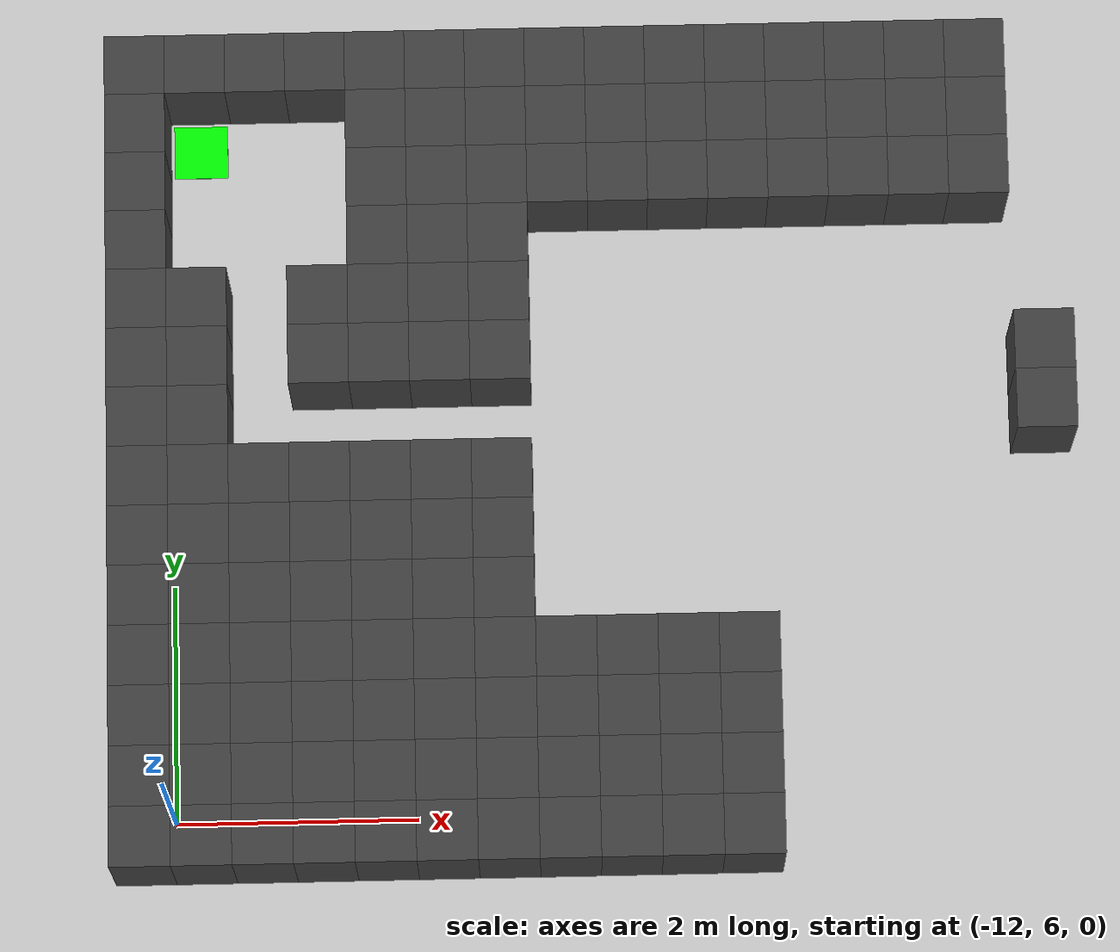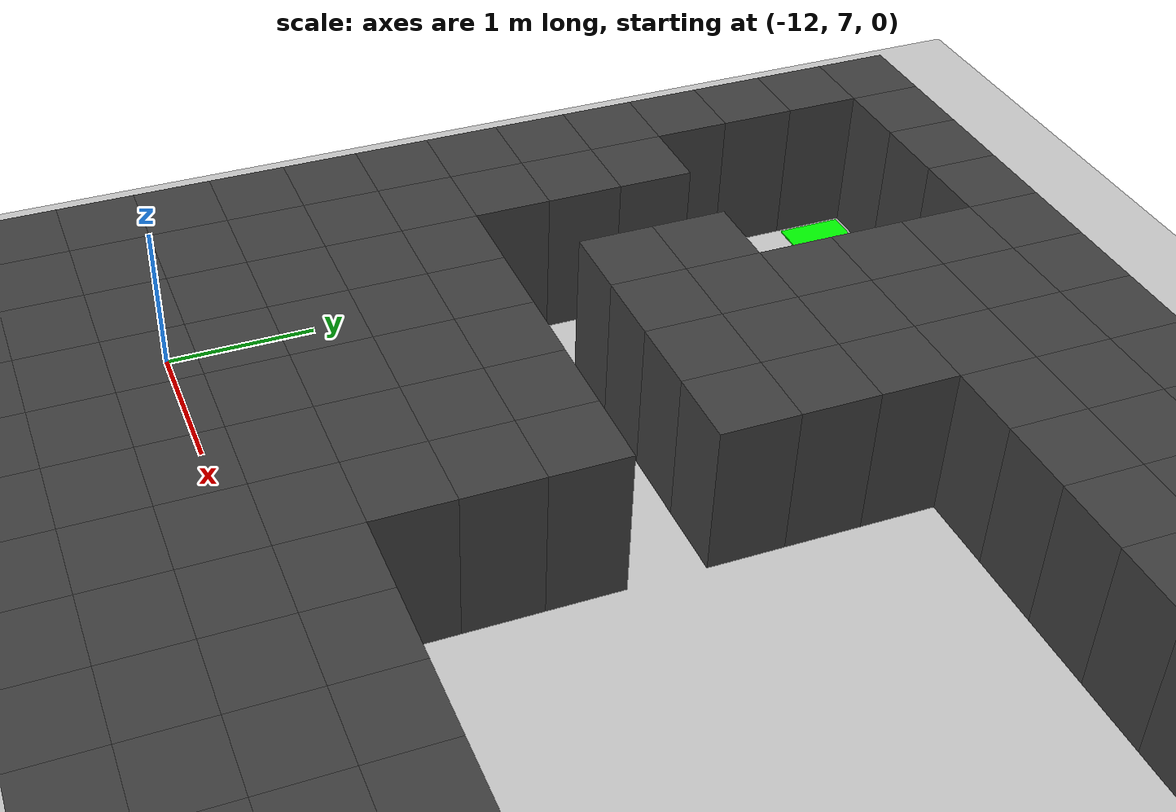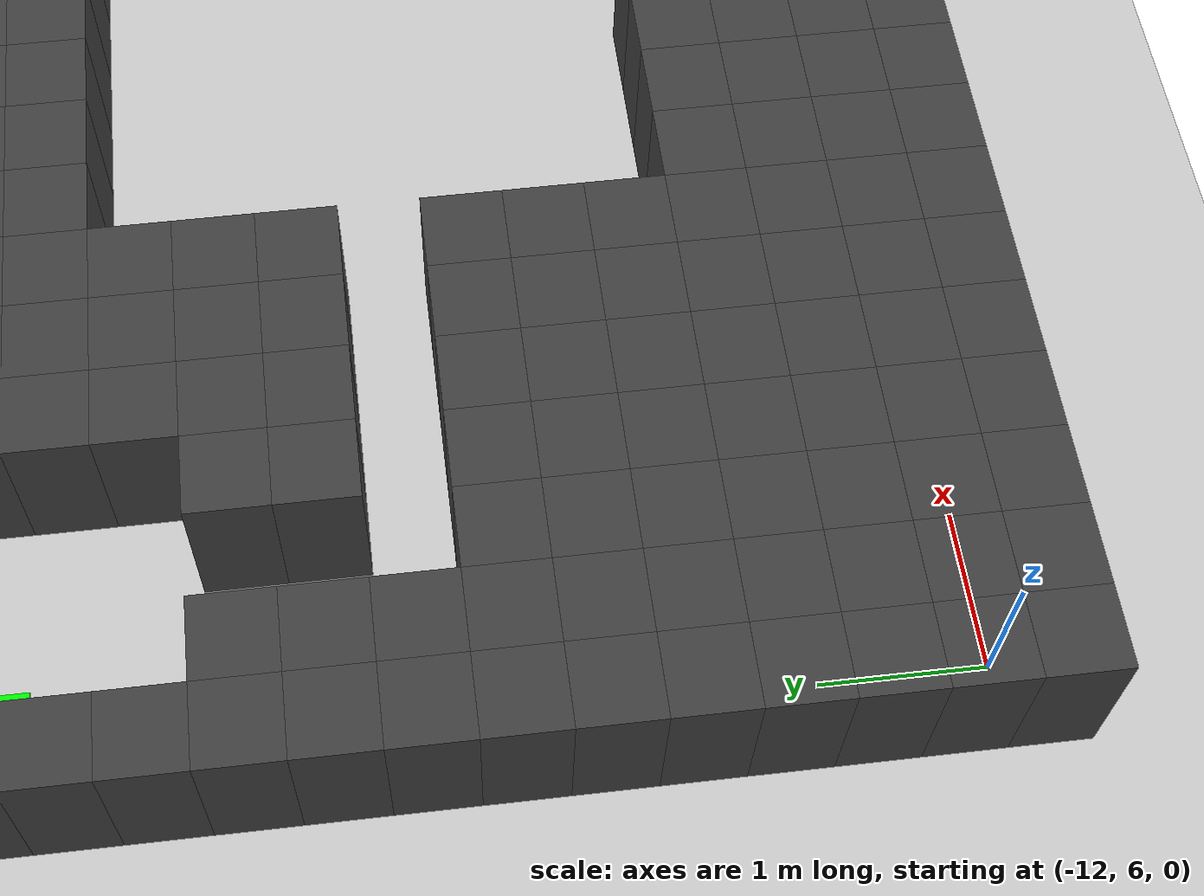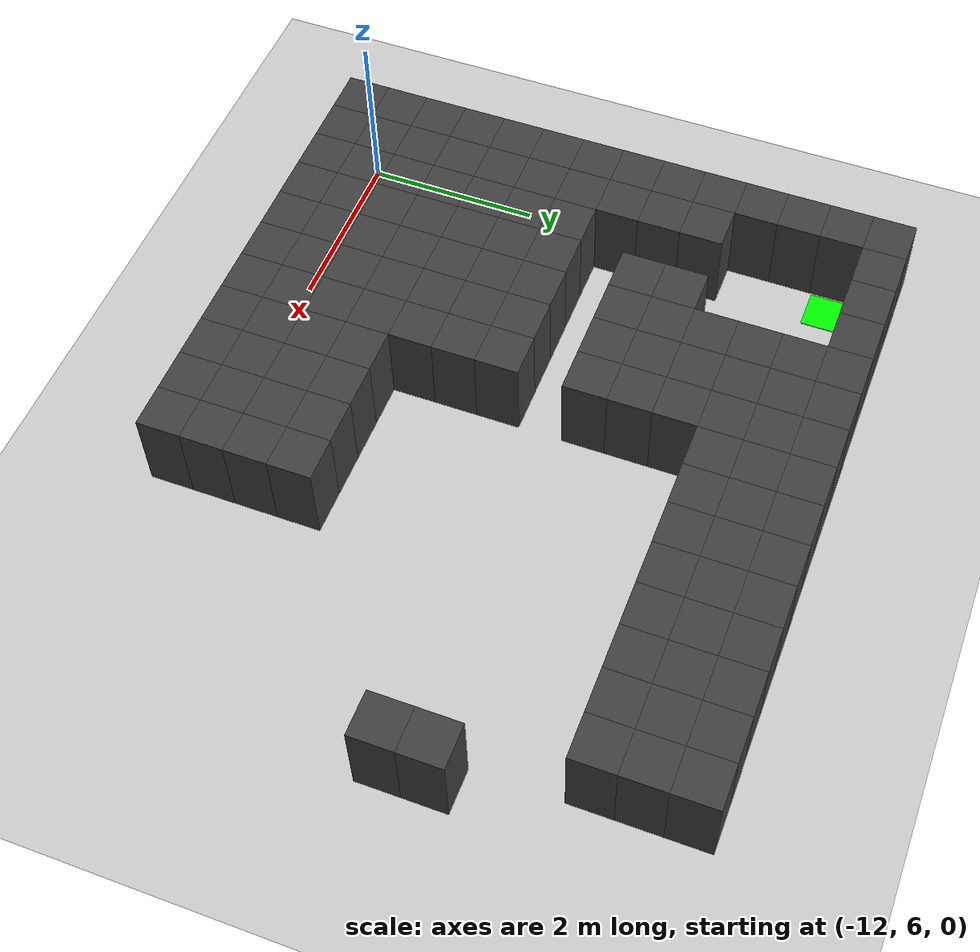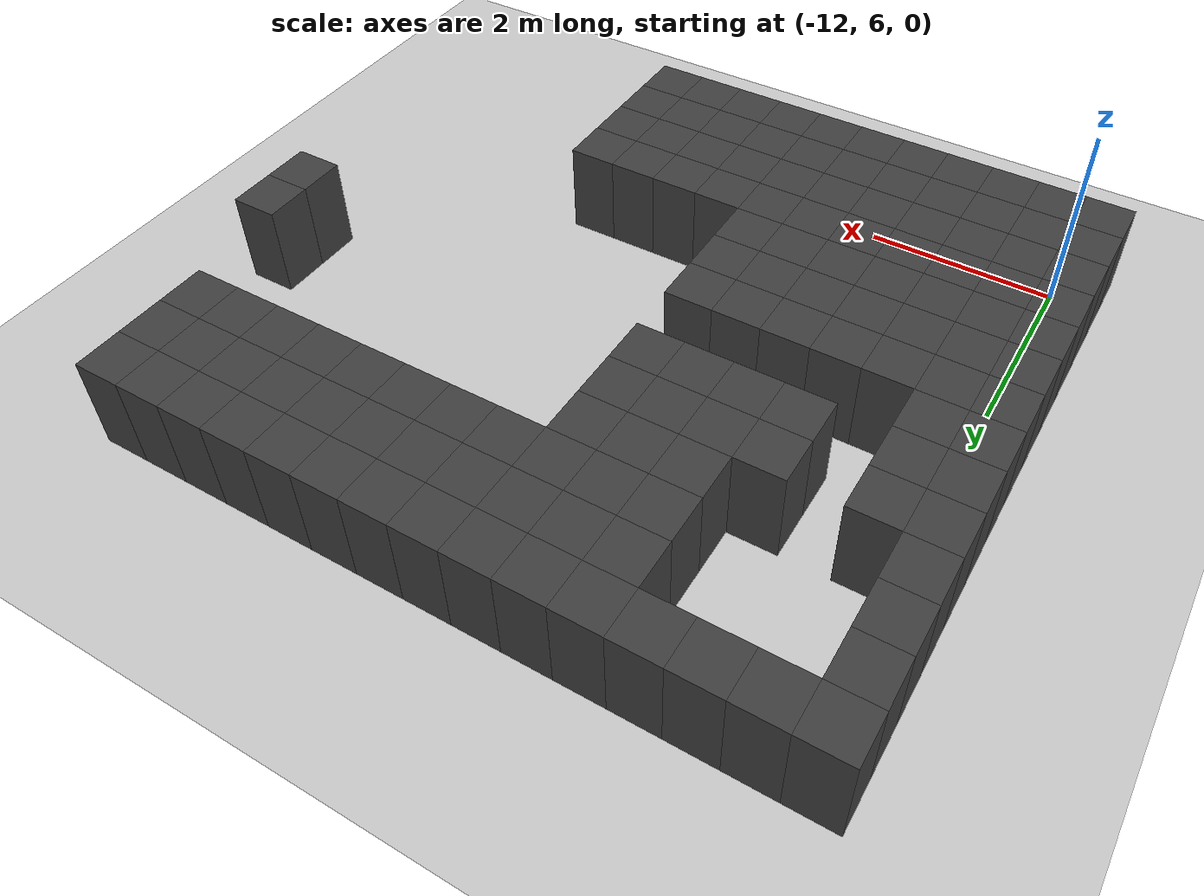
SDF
<sdf version="1.7">
 <world name="map_14495">
  <model name="ground_plane">
   <static>true</static>
   <link name="link">
    <collision name="collision">
     <geometry><plane><normal>0 0 1</normal><size>200 200</size></plane></geometry>
    </collision>
    <visual name="visual">
     <geometry><plane><normal>0 0 1</normal><size>200 200</size></plane></geometry>
     <material><ambient>0.8 0.8 0.8 1</ambient><diffuse>0.8 0.8 0.8 1</diffuse></material>
    </visual>
   </link>
  </model>
  <model name="maze_environment">
   <static>true</static>
   <link name="wall_0">
    <pose>-12.250 12.250 0.500 0 0 0</pose>
    <collision name="col"><geometry><box><size>0.5 0.5 1.0</size></box></geometry></collision>
    <visual name="vis">
     <geometry><box><size>0.5 0.5 1.0</size></box></geometry>
     <material><ambient>0.15 0.15 0.15 1</ambient><diffuse>0.25 0.25 0.25 1</diffuse></material>
    </visual>
   </link>
   <link name="wall_1">
    <pose>-11.750 12.250 0.500 0 0 0</pose>
    <collision name="col"><geometry><box><size>0.5 0.5 1.0</size></box></geometry></collision>
    <visual name="vis">
     <geometry><box><size>0.5 0.5 1.0</size></box></geometry>
     <material><ambient>0.15 0.15 0.15 1</ambient><diffuse>0.25 0.25 0.25 1</diffuse></material>
    </visual>
   </link>
   <link name="wall_2">
    <pose>-11.250 12.250 0.500 0 0 0</pose>
    <collision name="col"><geometry><box><size>0.5 0.5 1.0</size></box></geometry></collision>
    <visual name="vis">
     <geometry><box><size>0.5 0.5 1.0</size></box></geometry>
     <material><ambient>0.15 0.15 0.15 1</ambient><diffuse>0.25 0.25 0.25 1</diffuse></material>
    </visual>
   </link>
   <link name="wall_3">
    <pose>-10.750 12.250 0.500 0 0 0</pose>
    <collision name="col"><geometry><box><size>0.5 0.5 1.0</size></box></geometry></collision>
    <visual name="vis">
     <geometry><box><size>0.5 0.5 1.0</size></box></geometry>
     <material><ambient>0.15 0.15 0.15 1</ambient><diffuse>0.25 0.25 0.25 1</diffuse></material>
    </visual>
   </link>
   <link name="wall_4">
    <pose>-10.250 12.250 0.500 0 0 0</pose>
    <collision name="col"><geometry><box><size>0.5 0.5 1.0</size></box></geometry></collision>
    <visual name="vis">
     <geometry><box><size>0.5 0.5 1.0</size></box></geometry>
     <material><ambient>0.15 0.15 0.15 1</ambient><diffuse>0.25 0.25 0.25 1</diffuse></material>
    </visual>
   </link>
   <link name="wall_5">
    <pose>-9.750 12.250 0.500 0 0 0</pose>
    <collision name="col"><geometry><box><size>0.5 0.5 1.0</size></box></geometry></collision>
    <visual name="vis">
     <geometry><box><size>0.5 0.5 1.0</size></box></geometry>
     <material><ambient>0.15 0.15 0.15 1</ambient><diffuse>0.25 0.25 0.25 1</diffuse></material>
    </visual>
   </link>
   <link name="wall_6">
    <pose>-9.250 12.250 0.500 0 0 0</pose>
    <collision name="col"><geometry><box><size>0.5 0.5 1.0</size></box></geometry></collision>
    <visual name="vis">
     <geometry><box><size>0.5 0.5 1.0</size></box></geometry>
     <material><ambient>0.15 0.15 0.15 1</ambient><diffuse>0.25 0.25 0.25 1</diffuse></material>
    </visual>
   </link>
   <link name="wall_7">
    <pose>-8.750 12.250 0.500 0 0 0</pose>
    <collision name="col"><geometry><box><size>0.5 0.5 1.0</size></box></geometry></collision>
    <visual name="vis">
     <geometry><box><size>0.5 0.5 1.0</size></box></geometry>
     <material><ambient>0.15 0.15 0.15 1</ambient><diffuse>0.25 0.25 0.25 1</diffuse></material>
    </visual>
   </link>
   <link name="wall_8">
    <pose>-8.250 12.250 0.500 0 0 0</pose>
    <collision name="col"><geometry><box><size>0.5 0.5 1.0</size></box></geometry></collision>
    <visual name="vis">
     <geometry><box><size>0.5 0.5 1.0</size></box></geometry>
     <material><ambient>0.15 0.15 0.15 1</ambient><diffuse>0.25 0.25 0.25 1</diffuse></material>
    </visual>
   </link>
   <link name="wall_9">
    <pose>-7.750 12.250 0.500 0 0 0</pose>
    <collision name="col"><geometry><box><size>0.5 0.5 1.0</size></box></geometry></collision>
    <visual name="vis">
     <geometry><box><size>0.5 0.5 1.0</size></box></geometry>
     <material><ambient>0.15 0.15 0.15 1</ambient><diffuse>0.25 0.25 0.25 1</diffuse></material>
    </visual>
   </link>
   <link name="wall_10">
    <pose>-7.250 12.250 0.500 0 0 0</pose>
    <collision name="col"><geometry><box><size>0.5 0.5 1.0</size></box></geometry></collision>
    <visual name="vis">
     <geometry><box><size>0.5 0.5 1.0</size></box></geometry>
     <material><ambient>0.15 0.15 0.15 1</ambient><diffuse>0.25 0.25 0.25 1</diffuse></material>
    </visual>
   </link>
   <link name="wall_11">
    <pose>-6.750 12.250 0.500 0 0 0</pose>
    <collision name="col"><geometry><box><size>0.5 0.5 1.0</size></box></geometry></collision>
    <visual name="vis">
     <geometry><box><size>0.5 0.5 1.0</size></box></geometry>
     <material><ambient>0.15 0.15 0.15 1</ambient><diffuse>0.25 0.25 0.25 1</diffuse></material>
    </visual>
   </link>
   <link name="wall_12">
    <pose>-6.250 12.250 0.500 0 0 0</pose>
    <collision name="col"><geometry><box><size>0.5 0.5 1.0</size></box></geometry></collision>
    <visual name="vis">
     <geometry><box><size>0.5 0.5 1.0</size></box></geometry>
     <material><ambient>0.15 0.15 0.15 1</ambient><diffuse>0.25 0.25 0.25 1</diffuse></material>
    </visual>
   </link>
   <link name="wall_13">
    <pose>-5.750 12.250 0.500 0 0 0</pose>
    <collision name="col"><geometry><box><size>0.5 0.5 1.0</size></box></geometry></collision>
    <visual name="vis">
     <geometry><box><size>0.5 0.5 1.0</size></box></geometry>
     <material><ambient>0.15 0.15 0.15 1</ambient><diffuse>0.25 0.25 0.25 1</diffuse></material>
    </visual>
   </link>
   <link name="wall_14">
    <pose>-5.250 12.250 0.500 0 0 0</pose>
    <collision name="col"><geometry><box><size>0.5 0.5 1.0</size></box></geometry></collision>
    <visual name="vis">
     <geometry><box><size>0.5 0.5 1.0</size></box></geometry>
     <material><ambient>0.15 0.15 0.15 1</ambient><diffuse>0.25 0.25 0.25 1</diffuse></material>
    </visual>
   </link>
   <link name="wall_50">
    <pose>-12.250 11.750 0.500 0 0 0</pose>
    <collision name="col"><geometry><box><size>0.5 0.5 1.0</size></box></geometry></collision>
    <visual name="vis">
     <geometry><box><size>0.5 0.5 1.0</size></box></geometry>
     <material><ambient>0.15 0.15 0.15 1</ambient><diffuse>0.25 0.25 0.25 1</diffuse></material>
    </visual>
   </link>
   <link name="wall_51">
    <pose>-10.250 11.750 0.500 0 0 0</pose>
    <collision name="col"><geometry><box><size>0.5 0.5 1.0</size></box></geometry></collision>
    <visual name="vis">
     <geometry><box><size>0.5 0.5 1.0</size></box></geometry>
     <material><ambient>0.15 0.15 0.15 1</ambient><diffuse>0.25 0.25 0.25 1</diffuse></material>
    </visual>
   </link>
   <link name="wall_52">
    <pose>-9.750 11.750 0.500 0 0 0</pose>
    <collision name="col"><geometry><box><size>0.5 0.5 1.0</size></box></geometry></collision>
    <visual name="vis">
     <geometry><box><size>0.5 0.5 1.0</size></box></geometry>
     <material><ambient>0.15 0.15 0.15 1</ambient><diffuse>0.25 0.25 0.25 1</diffuse></material>
    </visual>
   </link>
   <link name="wall_53">
    <pose>-9.250 11.750 0.500 0 0 0</pose>
    <collision name="col"><geometry><box><size>0.5 0.5 1.0</size></box></geometry></collision>
    <visual name="vis">
     <geometry><box><size>0.5 0.5 1.0</size></box></geometry>
     <material><ambient>0.15 0.15 0.15 1</ambient><diffuse>0.25 0.25 0.25 1</diffuse></material>
    </visual>
   </link>
   <link name="wall_54">
    <pose>-8.750 11.750 0.500 0 0 0</pose>
    <collision name="col"><geometry><box><size>0.5 0.5 1.0</size></box></geometry></collision>
    <visual name="vis">
     <geometry><box><size>0.5 0.5 1.0</size></box></geometry>
     <material><ambient>0.15 0.15 0.15 1</ambient><diffuse>0.25 0.25 0.25 1</diffuse></material>
    </visual>
   </link>
   <link name="wall_55">
    <pose>-8.250 11.750 0.500 0 0 0</pose>
    <collision name="col"><geometry><box><size>0.5 0.5 1.0</size></box></geometry></collision>
    <visual name="vis">
     <geometry><box><size>0.5 0.5 1.0</size></box></geometry>
     <material><ambient>0.15 0.15 0.15 1</ambient><diffuse>0.25 0.25 0.25 1</diffuse></material>
    </visual>
   </link>
   <link name="wall_56">
    <pose>-7.750 11.750 0.500 0 0 0</pose>
    <collision name="col"><geometry><box><size>0.5 0.5 1.0</size></box></geometry></collision>
    <visual name="vis">
     <geometry><box><size>0.5 0.5 1.0</size></box></geometry>
     <material><ambient>0.15 0.15 0.15 1</ambient><diffuse>0.25 0.25 0.25 1</diffuse></material>
    </visual>
   </link>
   <link name="wall_57">
    <pose>-7.250 11.750 0.500 0 0 0</pose>
    <collision name="col"><geometry><box><size>0.5 0.5 1.0</size></box></geometry></collision>
    <visual name="vis">
     <geometry><box><size>0.5 0.5 1.0</size></box></geometry>
     <material><ambient>0.15 0.15 0.15 1</ambient><diffuse>0.25 0.25 0.25 1</diffuse></material>
    </visual>
   </link>
   <link name="wall_58">
    <pose>-6.750 11.750 0.500 0 0 0</pose>
    <collision name="col"><geometry><box><size>0.5 0.5 1.0</size></box></geometry></collision>
    <visual name="vis">
     <geometry><box><size>0.5 0.5 1.0</size></box></geometry>
     <material><ambient>0.15 0.15 0.15 1</ambient><diffuse>0.25 0.25 0.25 1</diffuse></material>
    </visual>
   </link>
   <link name="wall_59">
    <pose>-6.250 11.750 0.500 0 0 0</pose>
    <collision name="col"><geometry><box><size>0.5 0.5 1.0</size></box></geometry></collision>
    <visual name="vis">
     <geometry><box><size>0.5 0.5 1.0</size></box></geometry>
     <material><ambient>0.15 0.15 0.15 1</ambient><diffuse>0.25 0.25 0.25 1</diffuse></material>
    </visual>
   </link>
   <link name="wall_60">
    <pose>-5.750 11.750 0.500 0 0 0</pose>
    <collision name="col"><geometry><box><size>0.5 0.5 1.0</size></box></geometry></collision>
    <visual name="vis">
     <geometry><box><size>0.5 0.5 1.0</size></box></geometry>
     <material><ambient>0.15 0.15 0.15 1</ambient><diffuse>0.25 0.25 0.25 1</diffuse></material>
    </visual>
   </link>
   <link name="wall_61">
    <pose>-5.250 11.750 0.500 0 0 0</pose>
    <collision name="col"><geometry><box><size>0.5 0.5 1.0</size></box></geometry></collision>
    <visual name="vis">
     <geometry><box><size>0.5 0.5 1.0</size></box></geometry>
     <material><ambient>0.15 0.15 0.15 1</ambient><diffuse>0.25 0.25 0.25 1</diffuse></material>
    </visual>
   </link>
   <link name="wall_97">
    <pose>-12.250 11.250 0.500 0 0 0</pose>
    <collision name="col"><geometry><box><size>0.5 0.5 1.0</size></box></geometry></collision>
    <visual name="vis">
     <geometry><box><size>0.5 0.5 1.0</size></box></geometry>
     <material><ambient>0.15 0.15 0.15 1</ambient><diffuse>0.25 0.25 0.25 1</diffuse></material>
    </visual>
   </link>
   <link name="wall_98">
    <pose>-10.250 11.250 0.500 0 0 0</pose>
    <collision name="col"><geometry><box><size>0.5 0.5 1.0</size></box></geometry></collision>
    <visual name="vis">
     <geometry><box><size>0.5 0.5 1.0</size></box></geometry>
     <material><ambient>0.15 0.15 0.15 1</ambient><diffuse>0.25 0.25 0.25 1</diffuse></material>
    </visual>
   </link>
   <link name="wall_99">
    <pose>-9.750 11.250 0.500 0 0 0</pose>
    <collision name="col"><geometry><box><size>0.5 0.5 1.0</size></box></geometry></collision>
    <visual name="vis">
     <geometry><box><size>0.5 0.5 1.0</size></box></geometry>
     <material><ambient>0.15 0.15 0.15 1</ambient><diffuse>0.25 0.25 0.25 1</diffuse></material>
    </visual>
   </link>
   <link name="wall_100">
    <pose>-9.250 11.250 0.500 0 0 0</pose>
    <collision name="col"><geometry><box><size>0.5 0.5 1.0</size></box></geometry></collision>
    <visual name="vis">
     <geometry><box><size>0.5 0.5 1.0</size></box></geometry>
     <material><ambient>0.15 0.15 0.15 1</ambient><diffuse>0.25 0.25 0.25 1</diffuse></material>
    </visual>
   </link>
   <link name="wall_101">
    <pose>-8.750 11.250 0.500 0 0 0</pose>
    <collision name="col"><geometry><box><size>0.5 0.5 1.0</size></box></geometry></collision>
    <visual name="vis">
     <geometry><box><size>0.5 0.5 1.0</size></box></geometry>
     <material><ambient>0.15 0.15 0.15 1</ambient><diffuse>0.25 0.25 0.25 1</diffuse></material>
    </visual>
   </link>
   <link name="wall_102">
    <pose>-8.250 11.250 0.500 0 0 0</pose>
    <collision name="col"><geometry><box><size>0.5 0.5 1.0</size></box></geometry></collision>
    <visual name="vis">
     <geometry><box><size>0.5 0.5 1.0</size></box></geometry>
     <material><ambient>0.15 0.15 0.15 1</ambient><diffuse>0.25 0.25 0.25 1</diffuse></material>
    </visual>
   </link>
   <link name="wall_103">
    <pose>-7.750 11.250 0.500 0 0 0</pose>
    <collision name="col"><geometry><box><size>0.5 0.5 1.0</size></box></geometry></collision>
    <visual name="vis">
     <geometry><box><size>0.5 0.5 1.0</size></box></geometry>
     <material><ambient>0.15 0.15 0.15 1</ambient><diffuse>0.25 0.25 0.25 1</diffuse></material>
    </visual>
   </link>
   <link name="wall_104">
    <pose>-7.250 11.250 0.500 0 0 0</pose>
    <collision name="col"><geometry><box><size>0.5 0.5 1.0</size></box></geometry></collision>
    <visual name="vis">
     <geometry><box><size>0.5 0.5 1.0</size></box></geometry>
     <material><ambient>0.15 0.15 0.15 1</ambient><diffuse>0.25 0.25 0.25 1</diffuse></material>
    </visual>
   </link>
   <link name="wall_105">
    <pose>-6.750 11.250 0.500 0 0 0</pose>
    <collision name="col"><geometry><box><size>0.5 0.5 1.0</size></box></geometry></collision>
    <visual name="vis">
     <geometry><box><size>0.5 0.5 1.0</size></box></geometry>
     <material><ambient>0.15 0.15 0.15 1</ambient><diffuse>0.25 0.25 0.25 1</diffuse></material>
    </visual>
   </link>
   <link name="wall_106">
    <pose>-6.250 11.250 0.500 0 0 0</pose>
    <collision name="col"><geometry><box><size>0.5 0.5 1.0</size></box></geometry></collision>
    <visual name="vis">
     <geometry><box><size>0.5 0.5 1.0</size></box></geometry>
     <material><ambient>0.15 0.15 0.15 1</ambient><diffuse>0.25 0.25 0.25 1</diffuse></material>
    </visual>
   </link>
   <link name="wall_107">
    <pose>-5.750 11.250 0.500 0 0 0</pose>
    <collision name="col"><geometry><box><size>0.5 0.5 1.0</size></box></geometry></collision>
    <visual name="vis">
     <geometry><box><size>0.5 0.5 1.0</size></box></geometry>
     <material><ambient>0.15 0.15 0.15 1</ambient><diffuse>0.25 0.25 0.25 1</diffuse></material>
    </visual>
   </link>
   <link name="wall_108">
    <pose>-5.250 11.250 0.500 0 0 0</pose>
    <collision name="col"><geometry><box><size>0.5 0.5 1.0</size></box></geometry></collision>
    <visual name="vis">
     <geometry><box><size>0.5 0.5 1.0</size></box></geometry>
     <material><ambient>0.15 0.15 0.15 1</ambient><diffuse>0.25 0.25 0.25 1</diffuse></material>
    </visual>
   </link>
   <link name="wall_144">
    <pose>-12.250 10.750 0.500 0 0 0</pose>
    <collision name="col"><geometry><box><size>0.5 0.5 1.0</size></box></geometry></collision>
    <visual name="vis">
     <geometry><box><size>0.5 0.5 1.0</size></box></geometry>
     <material><ambient>0.15 0.15 0.15 1</ambient><diffuse>0.25 0.25 0.25 1</diffuse></material>
    </visual>
   </link>
   <link name="wall_145">
    <pose>-10.250 10.750 0.500 0 0 0</pose>
    <collision name="col"><geometry><box><size>0.5 0.5 1.0</size></box></geometry></collision>
    <visual name="vis">
     <geometry><box><size>0.5 0.5 1.0</size></box></geometry>
     <material><ambient>0.15 0.15 0.15 1</ambient><diffuse>0.25 0.25 0.25 1</diffuse></material>
    </visual>
   </link>
   <link name="wall_146">
    <pose>-9.750 10.750 0.500 0 0 0</pose>
    <collision name="col"><geometry><box><size>0.5 0.5 1.0</size></box></geometry></collision>
    <visual name="vis">
     <geometry><box><size>0.5 0.5 1.0</size></box></geometry>
     <material><ambient>0.15 0.15 0.15 1</ambient><diffuse>0.25 0.25 0.25 1</diffuse></material>
    </visual>
   </link>
   <link name="wall_147">
    <pose>-9.250 10.750 0.500 0 0 0</pose>
    <collision name="col"><geometry><box><size>0.5 0.5 1.0</size></box></geometry></collision>
    <visual name="vis">
     <geometry><box><size>0.5 0.5 1.0</size></box></geometry>
     <material><ambient>0.15 0.15 0.15 1</ambient><diffuse>0.25 0.25 0.25 1</diffuse></material>
    </visual>
   </link>
   <link name="wall_183">
    <pose>-12.250 10.250 0.500 0 0 0</pose>
    <collision name="col"><geometry><box><size>0.5 0.5 1.0</size></box></geometry></collision>
    <visual name="vis">
     <geometry><box><size>0.5 0.5 1.0</size></box></geometry>
     <material><ambient>0.15 0.15 0.15 1</ambient><diffuse>0.25 0.25 0.25 1</diffuse></material>
    </visual>
   </link>
   <link name="wall_184">
    <pose>-11.750 10.250 0.500 0 0 0</pose>
    <collision name="col"><geometry><box><size>0.5 0.5 1.0</size></box></geometry></collision>
    <visual name="vis">
     <geometry><box><size>0.5 0.5 1.0</size></box></geometry>
     <material><ambient>0.15 0.15 0.15 1</ambient><diffuse>0.25 0.25 0.25 1</diffuse></material>
    </visual>
   </link>
   <link name="wall_185">
    <pose>-10.750 10.250 0.500 0 0 0</pose>
    <collision name="col"><geometry><box><size>0.5 0.5 1.0</size></box></geometry></collision>
    <visual name="vis">
     <geometry><box><size>0.5 0.5 1.0</size></box></geometry>
     <material><ambient>0.15 0.15 0.15 1</ambient><diffuse>0.25 0.25 0.25 1</diffuse></material>
    </visual>
   </link>
   <link name="wall_186">
    <pose>-10.250 10.250 0.500 0 0 0</pose>
    <collision name="col"><geometry><box><size>0.5 0.5 1.0</size></box></geometry></collision>
    <visual name="vis">
     <geometry><box><size>0.5 0.5 1.0</size></box></geometry>
     <material><ambient>0.15 0.15 0.15 1</ambient><diffuse>0.25 0.25 0.25 1</diffuse></material>
    </visual>
   </link>
   <link name="wall_187">
    <pose>-9.750 10.250 0.500 0 0 0</pose>
    <collision name="col"><geometry><box><size>0.5 0.5 1.0</size></box></geometry></collision>
    <visual name="vis">
     <geometry><box><size>0.5 0.5 1.0</size></box></geometry>
     <material><ambient>0.15 0.15 0.15 1</ambient><diffuse>0.25 0.25 0.25 1</diffuse></material>
    </visual>
   </link>
   <link name="wall_188">
    <pose>-9.250 10.250 0.500 0 0 0</pose>
    <collision name="col"><geometry><box><size>0.5 0.5 1.0</size></box></geometry></collision>
    <visual name="vis">
     <geometry><box><size>0.5 0.5 1.0</size></box></geometry>
     <material><ambient>0.15 0.15 0.15 1</ambient><diffuse>0.25 0.25 0.25 1</diffuse></material>
    </visual>
   </link>
   <link name="wall_224">
    <pose>-12.250 9.750 0.500 0 0 0</pose>
    <collision name="col"><geometry><box><size>0.5 0.5 1.0</size></box></geometry></collision>
    <visual name="vis">
     <geometry><box><size>0.5 0.5 1.0</size></box></geometry>
     <material><ambient>0.15 0.15 0.15 1</ambient><diffuse>0.25 0.25 0.25 1</diffuse></material>
    </visual>
   </link>
   <link name="wall_225">
    <pose>-11.750 9.750 0.500 0 0 0</pose>
    <collision name="col"><geometry><box><size>0.5 0.5 1.0</size></box></geometry></collision>
    <visual name="vis">
     <geometry><box><size>0.5 0.5 1.0</size></box></geometry>
     <material><ambient>0.15 0.15 0.15 1</ambient><diffuse>0.25 0.25 0.25 1</diffuse></material>
    </visual>
   </link>
   <link name="wall_226">
    <pose>-10.750 9.750 0.500 0 0 0</pose>
    <collision name="col"><geometry><box><size>0.5 0.5 1.0</size></box></geometry></collision>
    <visual name="vis">
     <geometry><box><size>0.5 0.5 1.0</size></box></geometry>
     <material><ambient>0.15 0.15 0.15 1</ambient><diffuse>0.25 0.25 0.25 1</diffuse></material>
    </visual>
   </link>
   <link name="wall_227">
    <pose>-10.250 9.750 0.500 0 0 0</pose>
    <collision name="col"><geometry><box><size>0.5 0.5 1.0</size></box></geometry></collision>
    <visual name="vis">
     <geometry><box><size>0.5 0.5 1.0</size></box></geometry>
     <material><ambient>0.15 0.15 0.15 1</ambient><diffuse>0.25 0.25 0.25 1</diffuse></material>
    </visual>
   </link>
   <link name="wall_228">
    <pose>-9.750 9.750 0.500 0 0 0</pose>
    <collision name="col"><geometry><box><size>0.5 0.5 1.0</size></box></geometry></collision>
    <visual name="vis">
     <geometry><box><size>0.5 0.5 1.0</size></box></geometry>
     <material><ambient>0.15 0.15 0.15 1</ambient><diffuse>0.25 0.25 0.25 1</diffuse></material>
    </visual>
   </link>
   <link name="wall_229">
    <pose>-9.250 9.750 0.500 0 0 0</pose>
    <collision name="col"><geometry><box><size>0.5 0.5 1.0</size></box></geometry></collision>
    <visual name="vis">
     <geometry><box><size>0.5 0.5 1.0</size></box></geometry>
     <material><ambient>0.15 0.15 0.15 1</ambient><diffuse>0.25 0.25 0.25 1</diffuse></material>
    </visual>
   </link>
   <link name="wall_230">
    <pose>-4.750 9.750 0.500 0 0 0</pose>
    <collision name="col"><geometry><box><size>0.5 0.5 1.0</size></box></geometry></collision>
    <visual name="vis">
     <geometry><box><size>0.5 0.5 1.0</size></box></geometry>
     <material><ambient>0.15 0.15 0.15 1</ambient><diffuse>0.25 0.25 0.25 1</diffuse></material>
    </visual>
   </link>
   <link name="wall_265">
    <pose>-12.250 9.250 0.500 0 0 0</pose>
    <collision name="col"><geometry><box><size>0.5 0.5 1.0</size></box></geometry></collision>
    <visual name="vis">
     <geometry><box><size>0.5 0.5 1.0</size></box></geometry>
     <material><ambient>0.15 0.15 0.15 1</ambient><diffuse>0.25 0.25 0.25 1</diffuse></material>
    </visual>
   </link>
   <link name="wall_266">
    <pose>-11.750 9.250 0.500 0 0 0</pose>
    <collision name="col"><geometry><box><size>0.5 0.5 1.0</size></box></geometry></collision>
    <visual name="vis">
     <geometry><box><size>0.5 0.5 1.0</size></box></geometry>
     <material><ambient>0.15 0.15 0.15 1</ambient><diffuse>0.25 0.25 0.25 1</diffuse></material>
    </visual>
   </link>
   <link name="wall_267">
    <pose>-4.750 9.250 0.500 0 0 0</pose>
    <collision name="col"><geometry><box><size>0.5 0.5 1.0</size></box></geometry></collision>
    <visual name="vis">
     <geometry><box><size>0.5 0.5 1.0</size></box></geometry>
     <material><ambient>0.15 0.15 0.15 1</ambient><diffuse>0.25 0.25 0.25 1</diffuse></material>
    </visual>
   </link>
   <link name="wall_302">
    <pose>-12.250 8.750 0.500 0 0 0</pose>
    <collision name="col"><geometry><box><size>0.5 0.5 1.0</size></box></geometry></collision>
    <visual name="vis">
     <geometry><box><size>0.5 0.5 1.0</size></box></geometry>
     <material><ambient>0.15 0.15 0.15 1</ambient><diffuse>0.25 0.25 0.25 1</diffuse></material>
    </visual>
   </link>
   <link name="wall_303">
    <pose>-11.750 8.750 0.500 0 0 0</pose>
    <collision name="col"><geometry><box><size>0.5 0.5 1.0</size></box></geometry></collision>
    <visual name="vis">
     <geometry><box><size>0.5 0.5 1.0</size></box></geometry>
     <material><ambient>0.15 0.15 0.15 1</ambient><diffuse>0.25 0.25 0.25 1</diffuse></material>
    </visual>
   </link>
   <link name="wall_304">
    <pose>-11.250 8.750 0.500 0 0 0</pose>
    <collision name="col"><geometry><box><size>0.5 0.5 1.0</size></box></geometry></collision>
    <visual name="vis">
     <geometry><box><size>0.5 0.5 1.0</size></box></geometry>
     <material><ambient>0.15 0.15 0.15 1</ambient><diffuse>0.25 0.25 0.25 1</diffuse></material>
    </visual>
   </link>
   <link name="wall_305">
    <pose>-10.750 8.750 0.500 0 0 0</pose>
    <collision name="col"><geometry><box><size>0.5 0.5 1.0</size></box></geometry></collision>
    <visual name="vis">
     <geometry><box><size>0.5 0.5 1.0</size></box></geometry>
     <material><ambient>0.15 0.15 0.15 1</ambient><diffuse>0.25 0.25 0.25 1</diffuse></material>
    </visual>
   </link>
   <link name="wall_306">
    <pose>-10.250 8.750 0.500 0 0 0</pose>
    <collision name="col"><geometry><box><size>0.5 0.5 1.0</size></box></geometry></collision>
    <visual name="vis">
     <geometry><box><size>0.5 0.5 1.0</size></box></geometry>
     <material><ambient>0.15 0.15 0.15 1</ambient><diffuse>0.25 0.25 0.25 1</diffuse></material>
    </visual>
   </link>
   <link name="wall_307">
    <pose>-9.750 8.750 0.500 0 0 0</pose>
    <collision name="col"><geometry><box><size>0.5 0.5 1.0</size></box></geometry></collision>
    <visual name="vis">
     <geometry><box><size>0.5 0.5 1.0</size></box></geometry>
     <material><ambient>0.15 0.15 0.15 1</ambient><diffuse>0.25 0.25 0.25 1</diffuse></material>
    </visual>
   </link>
   <link name="wall_308">
    <pose>-9.250 8.750 0.500 0 0 0</pose>
    <collision name="col"><geometry><box><size>0.5 0.5 1.0</size></box></geometry></collision>
    <visual name="vis">
     <geometry><box><size>0.5 0.5 1.0</size></box></geometry>
     <material><ambient>0.15 0.15 0.15 1</ambient><diffuse>0.25 0.25 0.25 1</diffuse></material>
    </visual>
   </link>
   <link name="wall_340">
    <pose>-12.250 8.250 0.500 0 0 0</pose>
    <collision name="col"><geometry><box><size>0.5 0.5 1.0</size></box></geometry></collision>
    <visual name="vis">
     <geometry><box><size>0.5 0.5 1.0</size></box></geometry>
     <material><ambient>0.15 0.15 0.15 1</ambient><diffuse>0.25 0.25 0.25 1</diffuse></material>
    </visual>
   </link>
   <link name="wall_341">
    <pose>-11.750 8.250 0.500 0 0 0</pose>
    <collision name="col"><geometry><box><size>0.5 0.5 1.0</size></box></geometry></collision>
    <visual name="vis">
     <geometry><box><size>0.5 0.5 1.0</size></box></geometry>
     <material><ambient>0.15 0.15 0.15 1</ambient><diffuse>0.25 0.25 0.25 1</diffuse></material>
    </visual>
   </link>
   <link name="wall_342">
    <pose>-11.250 8.250 0.500 0 0 0</pose>
    <collision name="col"><geometry><box><size>0.5 0.5 1.0</size></box></geometry></collision>
    <visual name="vis">
     <geometry><box><size>0.5 0.5 1.0</size></box></geometry>
     <material><ambient>0.15 0.15 0.15 1</ambient><diffuse>0.25 0.25 0.25 1</diffuse></material>
    </visual>
   </link>
   <link name="wall_343">
    <pose>-10.750 8.250 0.500 0 0 0</pose>
    <collision name="col"><geometry><box><size>0.5 0.5 1.0</size></box></geometry></collision>
    <visual name="vis">
     <geometry><box><size>0.5 0.5 1.0</size></box></geometry>
     <material><ambient>0.15 0.15 0.15 1</ambient><diffuse>0.25 0.25 0.25 1</diffuse></material>
    </visual>
   </link>
   <link name="wall_344">
    <pose>-10.250 8.250 0.500 0 0 0</pose>
    <collision name="col"><geometry><box><size>0.5 0.5 1.0</size></box></geometry></collision>
    <visual name="vis">
     <geometry><box><size>0.5 0.5 1.0</size></box></geometry>
     <material><ambient>0.15 0.15 0.15 1</ambient><diffuse>0.25 0.25 0.25 1</diffuse></material>
    </visual>
   </link>
   <link name="wall_345">
    <pose>-9.750 8.250 0.500 0 0 0</pose>
    <collision name="col"><geometry><box><size>0.5 0.5 1.0</size></box></geometry></collision>
    <visual name="vis">
     <geometry><box><size>0.5 0.5 1.0</size></box></geometry>
     <material><ambient>0.15 0.15 0.15 1</ambient><diffuse>0.25 0.25 0.25 1</diffuse></material>
    </visual>
   </link>
   <link name="wall_346">
    <pose>-9.250 8.250 0.500 0 0 0</pose>
    <collision name="col"><geometry><box><size>0.5 0.5 1.0</size></box></geometry></collision>
    <visual name="vis">
     <geometry><box><size>0.5 0.5 1.0</size></box></geometry>
     <material><ambient>0.15 0.15 0.15 1</ambient><diffuse>0.25 0.25 0.25 1</diffuse></material>
    </visual>
   </link>
   <link name="wall_378">
    <pose>-12.250 7.750 0.500 0 0 0</pose>
    <collision name="col"><geometry><box><size>0.5 0.5 1.0</size></box></geometry></collision>
    <visual name="vis">
     <geometry><box><size>0.5 0.5 1.0</size></box></geometry>
     <material><ambient>0.15 0.15 0.15 1</ambient><diffuse>0.25 0.25 0.25 1</diffuse></material>
    </visual>
   </link>
   <link name="wall_379">
    <pose>-11.750 7.750 0.500 0 0 0</pose>
    <collision name="col"><geometry><box><size>0.5 0.5 1.0</size></box></geometry></collision>
    <visual name="vis">
     <geometry><box><size>0.5 0.5 1.0</size></box></geometry>
     <material><ambient>0.15 0.15 0.15 1</ambient><diffuse>0.25 0.25 0.25 1</diffuse></material>
    </visual>
   </link>
   <link name="wall_380">
    <pose>-11.250 7.750 0.500 0 0 0</pose>
    <collision name="col"><geometry><box><size>0.5 0.5 1.0</size></box></geometry></collision>
    <visual name="vis">
     <geometry><box><size>0.5 0.5 1.0</size></box></geometry>
     <material><ambient>0.15 0.15 0.15 1</ambient><diffuse>0.25 0.25 0.25 1</diffuse></material>
    </visual>
   </link>
   <link name="wall_381">
    <pose>-10.750 7.750 0.500 0 0 0</pose>
    <collision name="col"><geometry><box><size>0.5 0.5 1.0</size></box></geometry></collision>
    <visual name="vis">
     <geometry><box><size>0.5 0.5 1.0</size></box></geometry>
     <material><ambient>0.15 0.15 0.15 1</ambient><diffuse>0.25 0.25 0.25 1</diffuse></material>
    </visual>
   </link>
   <link name="wall_382">
    <pose>-10.250 7.750 0.500 0 0 0</pose>
    <collision name="col"><geometry><box><size>0.5 0.5 1.0</size></box></geometry></collision>
    <visual name="vis">
     <geometry><box><size>0.5 0.5 1.0</size></box></geometry>
     <material><ambient>0.15 0.15 0.15 1</ambient><diffuse>0.25 0.25 0.25 1</diffuse></material>
    </visual>
   </link>
   <link name="wall_383">
    <pose>-9.750 7.750 0.500 0 0 0</pose>
    <collision name="col"><geometry><box><size>0.5 0.5 1.0</size></box></geometry></collision>
    <visual name="vis">
     <geometry><box><size>0.5 0.5 1.0</size></box></geometry>
     <material><ambient>0.15 0.15 0.15 1</ambient><diffuse>0.25 0.25 0.25 1</diffuse></material>
    </visual>
   </link>
   <link name="wall_384">
    <pose>-9.250 7.750 0.500 0 0 0</pose>
    <collision name="col"><geometry><box><size>0.5 0.5 1.0</size></box></geometry></collision>
    <visual name="vis">
     <geometry><box><size>0.5 0.5 1.0</size></box></geometry>
     <material><ambient>0.15 0.15 0.15 1</ambient><diffuse>0.25 0.25 0.25 1</diffuse></material>
    </visual>
   </link>
   <link name="wall_409">
    <pose>-12.250 7.250 0.500 0 0 0</pose>
    <collision name="col"><geometry><box><size>0.5 0.5 1.0</size></box></geometry></collision>
    <visual name="vis">
     <geometry><box><size>0.5 0.5 1.0</size></box></geometry>
     <material><ambient>0.15 0.15 0.15 1</ambient><diffuse>0.25 0.25 0.25 1</diffuse></material>
    </visual>
   </link>
   <link name="wall_410">
    <pose>-11.750 7.250 0.500 0 0 0</pose>
    <collision name="col"><geometry><box><size>0.5 0.5 1.0</size></box></geometry></collision>
    <visual name="vis">
     <geometry><box><size>0.5 0.5 1.0</size></box></geometry>
     <material><ambient>0.15 0.15 0.15 1</ambient><diffuse>0.25 0.25 0.25 1</diffuse></material>
    </visual>
   </link>
   <link name="wall_411">
    <pose>-11.250 7.250 0.500 0 0 0</pose>
    <collision name="col"><geometry><box><size>0.5 0.5 1.0</size></box></geometry></collision>
    <visual name="vis">
     <geometry><box><size>0.5 0.5 1.0</size></box></geometry>
     <material><ambient>0.15 0.15 0.15 1</ambient><diffuse>0.25 0.25 0.25 1</diffuse></material>
    </visual>
   </link>
   <link name="wall_412">
    <pose>-10.750 7.250 0.500 0 0 0</pose>
    <collision name="col"><geometry><box><size>0.5 0.5 1.0</size></box></geometry></collision>
    <visual name="vis">
     <geometry><box><size>0.5 0.5 1.0</size></box></geometry>
     <material><ambient>0.15 0.15 0.15 1</ambient><diffuse>0.25 0.25 0.25 1</diffuse></material>
    </visual>
   </link>
   <link name="wall_413">
    <pose>-10.250 7.250 0.500 0 0 0</pose>
    <collision name="col"><geometry><box><size>0.5 0.5 1.0</size></box></geometry></collision>
    <visual name="vis">
     <geometry><box><size>0.5 0.5 1.0</size></box></geometry>
     <material><ambient>0.15 0.15 0.15 1</ambient><diffuse>0.25 0.25 0.25 1</diffuse></material>
    </visual>
   </link>
   <link name="wall_414">
    <pose>-9.750 7.250 0.500 0 0 0</pose>
    <collision name="col"><geometry><box><size>0.5 0.5 1.0</size></box></geometry></collision>
    <visual name="vis">
     <geometry><box><size>0.5 0.5 1.0</size></box></geometry>
     <material><ambient>0.15 0.15 0.15 1</ambient><diffuse>0.25 0.25 0.25 1</diffuse></material>
    </visual>
   </link>
   <link name="wall_415">
    <pose>-9.250 7.250 0.500 0 0 0</pose>
    <collision name="col"><geometry><box><size>0.5 0.5 1.0</size></box></geometry></collision>
    <visual name="vis">
     <geometry><box><size>0.5 0.5 1.0</size></box></geometry>
     <material><ambient>0.15 0.15 0.15 1</ambient><diffuse>0.25 0.25 0.25 1</diffuse></material>
    </visual>
   </link>
   <link name="wall_416">
    <pose>-8.750 7.250 0.500 0 0 0</pose>
    <collision name="col"><geometry><box><size>0.5 0.5 1.0</size></box></geometry></collision>
    <visual name="vis">
     <geometry><box><size>0.5 0.5 1.0</size></box></geometry>
     <material><ambient>0.15 0.15 0.15 1</ambient><diffuse>0.25 0.25 0.25 1</diffuse></material>
    </visual>
   </link>
   <link name="wall_417">
    <pose>-8.250 7.250 0.500 0 0 0</pose>
    <collision name="col"><geometry><box><size>0.5 0.5 1.0</size></box></geometry></collision>
    <visual name="vis">
     <geometry><box><size>0.5 0.5 1.0</size></box></geometry>
     <material><ambient>0.15 0.15 0.15 1</ambient><diffuse>0.25 0.25 0.25 1</diffuse></material>
    </visual>
   </link>
   <link name="wall_418">
    <pose>-7.750 7.250 0.500 0 0 0</pose>
    <collision name="col"><geometry><box><size>0.5 0.5 1.0</size></box></geometry></collision>
    <visual name="vis">
     <geometry><box><size>0.5 0.5 1.0</size></box></geometry>
     <material><ambient>0.15 0.15 0.15 1</ambient><diffuse>0.25 0.25 0.25 1</diffuse></material>
    </visual>
   </link>
   <link name="wall_419">
    <pose>-7.250 7.250 0.500 0 0 0</pose>
    <collision name="col"><geometry><box><size>0.5 0.5 1.0</size></box></geometry></collision>
    <visual name="vis">
     <geometry><box><size>0.5 0.5 1.0</size></box></geometry>
     <material><ambient>0.15 0.15 0.15 1</ambient><diffuse>0.25 0.25 0.25 1</diffuse></material>
    </visual>
   </link>
   <link name="wall_444">
    <pose>-12.250 6.750 0.500 0 0 0</pose>
    <collision name="col"><geometry><box><size>0.5 0.5 1.0</size></box></geometry></collision>
    <visual name="vis">
     <geometry><box><size>0.5 0.5 1.0</size></box></geometry>
     <material><ambient>0.15 0.15 0.15 1</ambient><diffuse>0.25 0.25 0.25 1</diffuse></material>
    </visual>
   </link>
   <link name="wall_445">
    <pose>-11.750 6.750 0.500 0 0 0</pose>
    <collision name="col"><geometry><box><size>0.5 0.5 1.0</size></box></geometry></collision>
    <visual name="vis">
     <geometry><box><size>0.5 0.5 1.0</size></box></geometry>
     <material><ambient>0.15 0.15 0.15 1</ambient><diffuse>0.25 0.25 0.25 1</diffuse></material>
    </visual>
   </link>
   <link name="wall_446">
    <pose>-11.250 6.750 0.500 0 0 0</pose>
    <collision name="col"><geometry><box><size>0.5 0.5 1.0</size></box></geometry></collision>
    <visual name="vis">
     <geometry><box><size>0.5 0.5 1.0</size></box></geometry>
     <material><ambient>0.15 0.15 0.15 1</ambient><diffuse>0.25 0.25 0.25 1</diffuse></material>
    </visual>
   </link>
   <link name="wall_447">
    <pose>-10.750 6.750 0.500 0 0 0</pose>
    <collision name="col"><geometry><box><size>0.5 0.5 1.0</size></box></geometry></collision>
    <visual name="vis">
     <geometry><box><size>0.5 0.5 1.0</size></box></geometry>
     <material><ambient>0.15 0.15 0.15 1</ambient><diffuse>0.25 0.25 0.25 1</diffuse></material>
    </visual>
   </link>
   <link name="wall_448">
    <pose>-10.250 6.750 0.500 0 0 0</pose>
    <collision name="col"><geometry><box><size>0.5 0.5 1.0</size></box></geometry></collision>
    <visual name="vis">
     <geometry><box><size>0.5 0.5 1.0</size></box></geometry>
     <material><ambient>0.15 0.15 0.15 1</ambient><diffuse>0.25 0.25 0.25 1</diffuse></material>
    </visual>
   </link>
   <link name="wall_449">
    <pose>-9.750 6.750 0.500 0 0 0</pose>
    <collision name="col"><geometry><box><size>0.5 0.5 1.0</size></box></geometry></collision>
    <visual name="vis">
     <geometry><box><size>0.5 0.5 1.0</size></box></geometry>
     <material><ambient>0.15 0.15 0.15 1</ambient><diffuse>0.25 0.25 0.25 1</diffuse></material>
    </visual>
   </link>
   <link name="wall_450">
    <pose>-9.250 6.750 0.500 0 0 0</pose>
    <collision name="col"><geometry><box><size>0.5 0.5 1.0</size></box></geometry></collision>
    <visual name="vis">
     <geometry><box><size>0.5 0.5 1.0</size></box></geometry>
     <material><ambient>0.15 0.15 0.15 1</ambient><diffuse>0.25 0.25 0.25 1</diffuse></material>
    </visual>
   </link>
   <link name="wall_451">
    <pose>-8.750 6.750 0.500 0 0 0</pose>
    <collision name="col"><geometry><box><size>0.5 0.5 1.0</size></box></geometry></collision>
    <visual name="vis">
     <geometry><box><size>0.5 0.5 1.0</size></box></geometry>
     <material><ambient>0.15 0.15 0.15 1</ambient><diffuse>0.25 0.25 0.25 1</diffuse></material>
    </visual>
   </link>
   <link name="wall_452">
    <pose>-8.250 6.750 0.500 0 0 0</pose>
    <collision name="col"><geometry><box><size>0.5 0.5 1.0</size></box></geometry></collision>
    <visual name="vis">
     <geometry><box><size>0.5 0.5 1.0</size></box></geometry>
     <material><ambient>0.15 0.15 0.15 1</ambient><diffuse>0.25 0.25 0.25 1</diffuse></material>
    </visual>
   </link>
   <link name="wall_453">
    <pose>-7.750 6.750 0.500 0 0 0</pose>
    <collision name="col"><geometry><box><size>0.5 0.5 1.0</size></box></geometry></collision>
    <visual name="vis">
     <geometry><box><size>0.5 0.5 1.0</size></box></geometry>
     <material><ambient>0.15 0.15 0.15 1</ambient><diffuse>0.25 0.25 0.25 1</diffuse></material>
    </visual>
   </link>
   <link name="wall_454">
    <pose>-7.250 6.750 0.500 0 0 0</pose>
    <collision name="col"><geometry><box><size>0.5 0.5 1.0</size></box></geometry></collision>
    <visual name="vis">
     <geometry><box><size>0.5 0.5 1.0</size></box></geometry>
     <material><ambient>0.15 0.15 0.15 1</ambient><diffuse>0.25 0.25 0.25 1</diffuse></material>
    </visual>
   </link>
   <link name="wall_469">
    <pose>-12.250 6.250 0.500 0 0 0</pose>
    <collision name="col"><geometry><box><size>0.5 0.5 1.0</size></box></geometry></collision>
    <visual name="vis">
     <geometry><box><size>0.5 0.5 1.0</size></box></geometry>
     <material><ambient>0.15 0.15 0.15 1</ambient><diffuse>0.25 0.25 0.25 1</diffuse></material>
    </visual>
   </link>
   <link name="wall_470">
    <pose>-11.750 6.250 0.500 0 0 0</pose>
    <collision name="col"><geometry><box><size>0.5 0.5 1.0</size></box></geometry></collision>
    <visual name="vis">
     <geometry><box><size>0.5 0.5 1.0</size></box></geometry>
     <material><ambient>0.15 0.15 0.15 1</ambient><diffuse>0.25 0.25 0.25 1</diffuse></material>
    </visual>
   </link>
   <link name="wall_471">
    <pose>-11.250 6.250 0.500 0 0 0</pose>
    <collision name="col"><geometry><box><size>0.5 0.5 1.0</size></box></geometry></collision>
    <visual name="vis">
     <geometry><box><size>0.5 0.5 1.0</size></box></geometry>
     <material><ambient>0.15 0.15 0.15 1</ambient><diffuse>0.25 0.25 0.25 1</diffuse></material>
    </visual>
   </link>
   <link name="wall_472">
    <pose>-10.750 6.250 0.500 0 0 0</pose>
    <collision name="col"><geometry><box><size>0.5 0.5 1.0</size></box></geometry></collision>
    <visual name="vis">
     <geometry><box><size>0.5 0.5 1.0</size></box></geometry>
     <material><ambient>0.15 0.15 0.15 1</ambient><diffuse>0.25 0.25 0.25 1</diffuse></material>
    </visual>
   </link>
   <link name="wall_473">
    <pose>-10.250 6.250 0.500 0 0 0</pose>
    <collision name="col"><geometry><box><size>0.5 0.5 1.0</size></box></geometry></collision>
    <visual name="vis">
     <geometry><box><size>0.5 0.5 1.0</size></box></geometry>
     <material><ambient>0.15 0.15 0.15 1</ambient><diffuse>0.25 0.25 0.25 1</diffuse></material>
    </visual>
   </link>
   <link name="wall_474">
    <pose>-9.750 6.250 0.500 0 0 0</pose>
    <collision name="col"><geometry><box><size>0.5 0.5 1.0</size></box></geometry></collision>
    <visual name="vis">
     <geometry><box><size>0.5 0.5 1.0</size></box></geometry>
     <material><ambient>0.15 0.15 0.15 1</ambient><diffuse>0.25 0.25 0.25 1</diffuse></material>
    </visual>
   </link>
   <link name="wall_475">
    <pose>-9.250 6.250 0.500 0 0 0</pose>
    <collision name="col"><geometry><box><size>0.5 0.5 1.0</size></box></geometry></collision>
    <visual name="vis">
     <geometry><box><size>0.5 0.5 1.0</size></box></geometry>
     <material><ambient>0.15 0.15 0.15 1</ambient><diffuse>0.25 0.25 0.25 1</diffuse></material>
    </visual>
   </link>
   <link name="wall_476">
    <pose>-8.750 6.250 0.500 0 0 0</pose>
    <collision name="col"><geometry><box><size>0.5 0.5 1.0</size></box></geometry></collision>
    <visual name="vis">
     <geometry><box><size>0.5 0.5 1.0</size></box></geometry>
     <material><ambient>0.15 0.15 0.15 1</ambient><diffuse>0.25 0.25 0.25 1</diffuse></material>
    </visual>
   </link>
   <link name="wall_477">
    <pose>-8.250 6.250 0.500 0 0 0</pose>
    <collision name="col"><geometry><box><size>0.5 0.5 1.0</size></box></geometry></collision>
    <visual name="vis">
     <geometry><box><size>0.5 0.5 1.0</size></box></geometry>
     <material><ambient>0.15 0.15 0.15 1</ambient><diffuse>0.25 0.25 0.25 1</diffuse></material>
    </visual>
   </link>
   <link name="wall_478">
    <pose>-7.750 6.250 0.500 0 0 0</pose>
    <collision name="col"><geometry><box><size>0.5 0.5 1.0</size></box></geometry></collision>
    <visual name="vis">
     <geometry><box><size>0.5 0.5 1.0</size></box></geometry>
     <material><ambient>0.15 0.15 0.15 1</ambient><diffuse>0.25 0.25 0.25 1</diffuse></material>
    </visual>
   </link>
   <link name="wall_479">
    <pose>-7.250 6.250 0.500 0 0 0</pose>
    <collision name="col"><geometry><box><size>0.5 0.5 1.0</size></box></geometry></collision>
    <visual name="vis">
     <geometry><box><size>0.5 0.5 1.0</size></box></geometry>
     <material><ambient>0.15 0.15 0.15 1</ambient><diffuse>0.25 0.25 0.25 1</diffuse></material>
    </visual>
   </link>
   <link name="wall_499">
    <pose>-12.250 5.750 0.500 0 0 0</pose>
    <collision name="col"><geometry><box><size>0.5 0.5 1.0</size></box></geometry></collision>
    <visual name="vis">
     <geometry><box><size>0.5 0.5 1.0</size></box></geometry>
     <material><ambient>0.15 0.15 0.15 1</ambient><diffuse>0.25 0.25 0.25 1</diffuse></material>
    </visual>
   </link>
   <link name="wall_500">
    <pose>-11.750 5.750 0.500 0 0 0</pose>
    <collision name="col"><geometry><box><size>0.5 0.5 1.0</size></box></geometry></collision>
    <visual name="vis">
     <geometry><box><size>0.5 0.5 1.0</size></box></geometry>
     <material><ambient>0.15 0.15 0.15 1</ambient><diffuse>0.25 0.25 0.25 1</diffuse></material>
    </visual>
   </link>
   <link name="wall_501">
    <pose>-11.250 5.750 0.500 0 0 0</pose>
    <collision name="col"><geometry><box><size>0.5 0.5 1.0</size></box></geometry></collision>
    <visual name="vis">
     <geometry><box><size>0.5 0.5 1.0</size></box></geometry>
     <material><ambient>0.15 0.15 0.15 1</ambient><diffuse>0.25 0.25 0.25 1</diffuse></material>
    </visual>
   </link>
   <link name="wall_502">
    <pose>-10.750 5.750 0.500 0 0 0</pose>
    <collision name="col"><geometry><box><size>0.5 0.5 1.0</size></box></geometry></collision>
    <visual name="vis">
     <geometry><box><size>0.5 0.5 1.0</size></box></geometry>
     <material><ambient>0.15 0.15 0.15 1</ambient><diffuse>0.25 0.25 0.25 1</diffuse></material>
    </visual>
   </link>
   <link name="wall_503">
    <pose>-10.250 5.750 0.500 0 0 0</pose>
    <collision name="col"><geometry><box><size>0.5 0.5 1.0</size></box></geometry></collision>
    <visual name="vis">
     <geometry><box><size>0.5 0.5 1.0</size></box></geometry>
     <material><ambient>0.15 0.15 0.15 1</ambient><diffuse>0.25 0.25 0.25 1</diffuse></material>
    </visual>
   </link>
   <link name="wall_504">
    <pose>-9.750 5.750 0.500 0 0 0</pose>
    <collision name="col"><geometry><box><size>0.5 0.5 1.0</size></box></geometry></collision>
    <visual name="vis">
     <geometry><box><size>0.5 0.5 1.0</size></box></geometry>
     <material><ambient>0.15 0.15 0.15 1</ambient><diffuse>0.25 0.25 0.25 1</diffuse></material>
    </visual>
   </link>
   <link name="wall_505">
    <pose>-9.250 5.750 0.500 0 0 0</pose>
    <collision name="col"><geometry><box><size>0.5 0.5 1.0</size></box></geometry></collision>
    <visual name="vis">
     <geometry><box><size>0.5 0.5 1.0</size></box></geometry>
     <material><ambient>0.15 0.15 0.15 1</ambient><diffuse>0.25 0.25 0.25 1</diffuse></material>
    </visual>
   </link>
   <link name="wall_506">
    <pose>-8.750 5.750 0.500 0 0 0</pose>
    <collision name="col"><geometry><box><size>0.5 0.5 1.0</size></box></geometry></collision>
    <visual name="vis">
     <geometry><box><size>0.5 0.5 1.0</size></box></geometry>
     <material><ambient>0.15 0.15 0.15 1</ambient><diffuse>0.25 0.25 0.25 1</diffuse></material>
    </visual>
   </link>
   <link name="wall_507">
    <pose>-8.250 5.750 0.500 0 0 0</pose>
    <collision name="col"><geometry><box><size>0.5 0.5 1.0</size></box></geometry></collision>
    <visual name="vis">
     <geometry><box><size>0.5 0.5 1.0</size></box></geometry>
     <material><ambient>0.15 0.15 0.15 1</ambient><diffuse>0.25 0.25 0.25 1</diffuse></material>
    </visual>
   </link>
   <link name="wall_508">
    <pose>-7.750 5.750 0.500 0 0 0</pose>
    <collision name="col"><geometry><box><size>0.5 0.5 1.0</size></box></geometry></collision>
    <visual name="vis">
     <geometry><box><size>0.5 0.5 1.0</size></box></geometry>
     <material><ambient>0.15 0.15 0.15 1</ambient><diffuse>0.25 0.25 0.25 1</diffuse></material>
    </visual>
   </link>
   <link name="wall_509">
    <pose>-7.250 5.750 0.500 0 0 0</pose>
    <collision name="col"><geometry><box><size>0.5 0.5 1.0</size></box></geometry></collision>
    <visual name="vis">
     <geometry><box><size>0.5 0.5 1.0</size></box></geometry>
     <material><ambient>0.15 0.15 0.15 1</ambient><diffuse>0.25 0.25 0.25 1</diffuse></material>
    </visual>
   </link>
   <link name="start_zone">
    <pose>-11.750 11.750 0.005 0 0 0</pose>
    <visual name="vis">
     <geometry><box><size>0.45 0.45 0.01</size></box></geometry>
     <material>
      <ambient>0.0 1.0 0.0 1</ambient>
      <diffuse>0.0 1.0 0.0 1</diffuse>
      <emissive>0.00 0.60 0.00 1</emissive>
     </material>
    </visual>
   </link>
  </model>
 </world>
</sdf>
